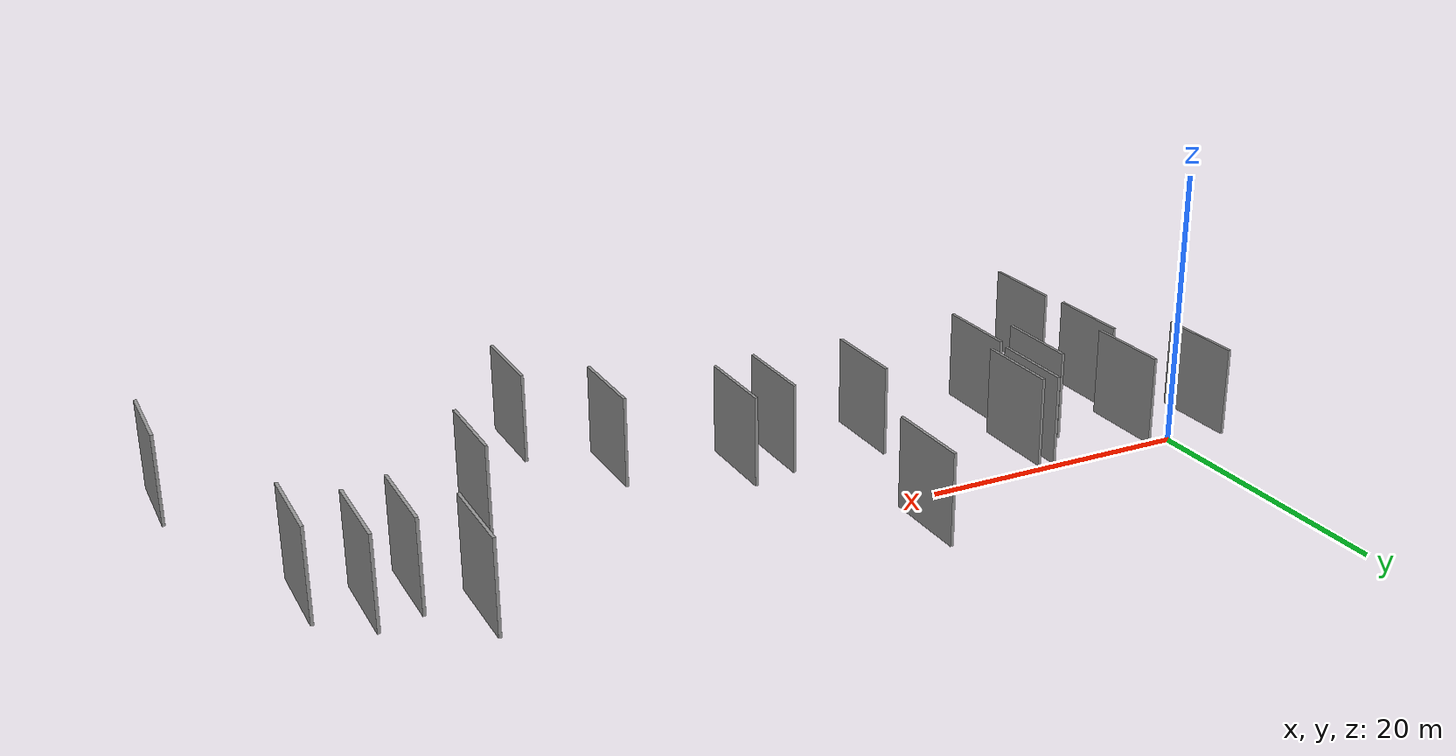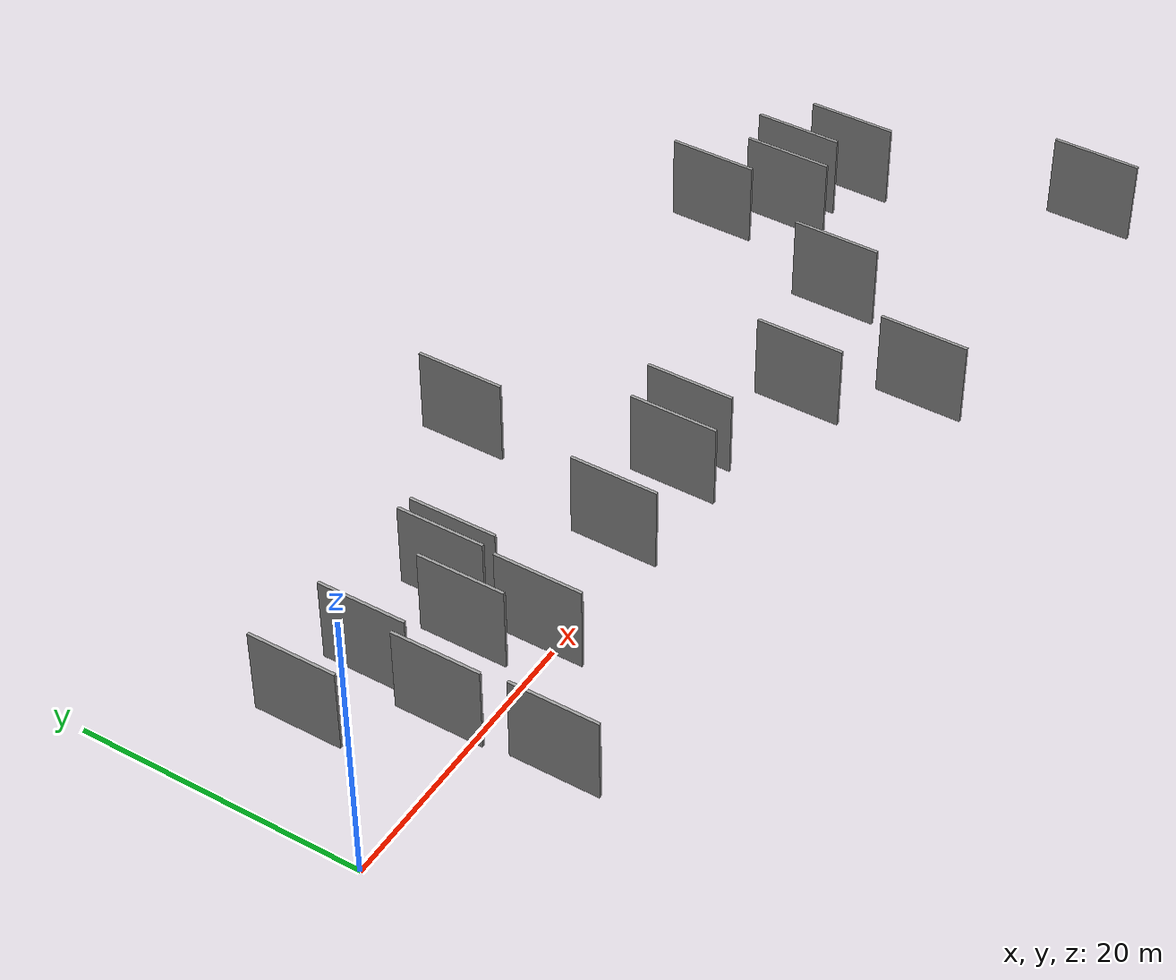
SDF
<sdf version="1.6">
 <world name="default">
  <scene>
   <sky><clouds><speed>12</speed></clouds></sky>
   <ambient>0.4 0.4 0.4 1</ambient>
   <background>0.7 0.7 0.7 1</background>
   <shadows>1</shadows>
  </scene>
  <gravity>0 0 -9.8066</gravity>
  <magnetic_field>6e-06 2.3e-05 -4.2e-05</magnetic_field>
  <physics default="0" name="default_physics" type="ode">
   <ode>
    <solver>
     <type>quick</type>
     <iters>10</iters>
     <sor>1.0</sor>
     <use_dynamic_moi_rescaling>0</use_dynamic_moi_rescaling>
    </solver>
    <constraints>
     <cfm>0</cfm>
     <erp>0.2</erp>
     <contact_max_correcting_vel>100</contact_max_correcting_vel>
     <contact_surface_layer>0.001</contact_surface_layer>
    </constraints>
   </ode>
   <max_step_size>0.004</max_step_size>
   <real_time_factor>1</real_time_factor>
   <real_time_update_rate>250</real_time_update_rate>
  </physics>
  <light name="sun" type="directional">
   <pose>0 0 10 0 0 0</pose>
   <diffuse>0.8 0.8 0.8 1</diffuse>
   <specular>0.2 0.2 0.2 1</specular>
   <attenuation>
    <range>1000</range>
    <constant>0.9</constant>
    <linear>0.01</linear>
    <quadratic>0.001</quadratic>
   </attenuation>
   <direction>-0.5 0.1 -0.9</direction>
  </light>
  <model name="grey_wall_1">
   <static>1</static>
   <pose>63.9856 4.0435 5.0 0.000000 0.000000 1.570796</pose>
   <link name="link">
    <pose>0 0 3.00 0 0 0</pose>
    <collision name="collision"><geometry><box><size>6.00 0.2 6.00</size></box></geometry></collision>
    <visual name="visual">
     <cast_shadows>0</cast_shadows>
     <geometry><box><size>6.00 0.2 6.00</size></box></geometry>
     <material>
      <script>
       <uri>model://grey_wall/materials/scripts</uri>
       <uri>model://grey_wall/materials/textures</uri>
       <name>vrc/grey_wall</name>
      </script>
     </material>
    </visual>
   </link>
  </model>
  <model name="grey_wall_2">
   <static>1</static>
   <pose>55.3651 9.8947 5.0 0.000000 0.000000 1.570796</pose>
   <link name="link">
    <pose>0 0 3.00 0 0 0</pose>
    <collision name="collision"><geometry><box><size>6.00 0.2 6.00</size></box></geometry></collision>
    <visual name="visual">
     <cast_shadows>0</cast_shadows>
     <geometry><box><size>6.00 0.2 6.00</size></box></geometry>
     <material>
      <script>
       <uri>model://grey_wall/materials/scripts</uri>
       <uri>model://grey_wall/materials/textures</uri>
       <name>vrc/grey_wall</name>
      </script>
     </material>
    </visual>
   </link>
  </model>
  <model name="grey_wall_3">
   <static>1</static>
   <pose>16.2559 5.2080 5.0 0.000000 0.000000 1.570796</pose>
   <link name="link">
    <pose>0 0 3.00 0 0 0</pose>
    <collision name="collision"><geometry><box><size>6.00 0.2 6.00</size></box></geometry></collision>
    <visual name="visual">
     <cast_shadows>0</cast_shadows>
     <geometry><box><size>6.00 0.2 6.00</size></box></geometry>
     <material>
      <script>
       <uri>model://grey_wall/materials/scripts</uri>
       <uri>model://grey_wall/materials/textures</uri>
       <name>vrc/grey_wall</name>
      </script>
     </material>
    </visual>
   </link>
  </model>
  <model name="grey_wall_4">
   <static>1</static>
   <pose>17.2977 5.0388 5.0 0.000000 0.000000 1.570796</pose>
   <link name="link">
    <pose>0 0 3.00 0 0 0</pose>
    <collision name="collision"><geometry><box><size>6.00 0.2 6.00</size></box></geometry></collision>
    <visual name="visual">
     <cast_shadows>0</cast_shadows>
     <geometry><box><size>6.00 0.2 6.00</size></box></geometry>
     <material>
      <script>
       <uri>model://grey_wall/materials/scripts</uri>
       <uri>model://grey_wall/materials/textures</uri>
       <name>vrc/grey_wall</name>
      </script>
     </material>
    </visual>
   </link>
  </model>
  <model name="grey_wall_5">
   <static>1</static>
   <pose>52.0070 -1.3309 5.0 0.000000 0.000000 1.570796</pose>
   <link name="link">
    <pose>0 0 3.00 0 0 0</pose>
    <collision name="collision"><geometry><box><size>6.00 0.2 6.00</size></box></geometry></collision>
    <visual name="visual">
     <cast_shadows>0</cast_shadows>
     <geometry><box><size>6.00 0.2 6.00</size></box></geometry>
     <material>
      <script>
       <uri>model://grey_wall/materials/scripts</uri>
       <uri>model://grey_wall/materials/textures</uri>
       <name>vrc/grey_wall</name>
      </script>
     </material>
    </visual>
   </link>
  </model>
  <model name="grey_wall_6">
   <static>1</static>
   <pose>61.0086 6.5382 5.0 0.000000 0.000000 1.570796</pose>
   <link name="link">
    <pose>0 0 3.00 0 0 0</pose>
    <collision name="collision"><geometry><box><size>6.00 0.2 6.00</size></box></geometry></collision>
    <visual name="visual">
     <cast_shadows>0</cast_shadows>
     <geometry><box><size>6.00 0.2 6.00</size></box></geometry>
     <material>
      <script>
       <uri>model://grey_wall/materials/scripts</uri>
       <uri>model://grey_wall/materials/textures</uri>
       <name>vrc/grey_wall</name>
      </script>
     </material>
    </visual>
   </link>
  </model>
  <model name="grey_wall_7">
   <static>1</static>
   <pose>16.0173 -1.7031 5.0 0.000000 0.000000 1.570796</pose>
   <link name="link">
    <pose>0 0 3.00 0 0 0</pose>
    <collision name="collision"><geometry><box><size>6.00 0.2 6.00</size></box></geometry></collision>
    <visual name="visual">
     <cast_shadows>0</cast_shadows>
     <geometry><box><size>6.00 0.2 6.00</size></box></geometry>
     <material>
      <script>
       <uri>model://grey_wall/materials/scripts</uri>
       <uri>model://grey_wall/materials/textures</uri>
       <name>vrc/grey_wall</name>
      </script>
     </material>
    </visual>
   </link>
  </model>
  <model name="grey_wall_8">
   <static>1</static>
   <pose>8.1097 -7.8598 5.0 0.000000 0.000000 1.570796</pose>
   <link name="link">
    <pose>0 0 3.00 0 0 0</pose>
    <collision name="collision"><geometry><box><size>6.00 0.2 6.00</size></box></geometry></collision>
    <visual name="visual">
     <cast_shadows>0</cast_shadows>
     <geometry><box><size>6.00 0.2 6.00</size></box></geometry>
     <material>
      <script>
       <uri>model://grey_wall/materials/scripts</uri>
       <uri>model://grey_wall/materials/textures</uri>
       <name>vrc/grey_wall</name>
      </script>
     </material>
    </visual>
   </link>
  </model>
  <model name="grey_wall_9">
   <static>1</static>
   <pose>42.1483 -4.1487 5.0 0.000000 0.000000 1.570796</pose>
   <link name="link">
    <pose>0 0 3.00 0 0 0</pose>
    <collision name="collision"><geometry><box><size>6.00 0.2 6.00</size></box></geometry></collision>
    <visual name="visual">
     <cast_shadows>0</cast_shadows>
     <geometry><box><size>6.00 0.2 6.00</size></box></geometry>
     <material>
      <script>
       <uri>model://grey_wall/materials/scripts</uri>
       <uri>model://grey_wall/materials/textures</uri>
       <name>vrc/grey_wall</name>
      </script>
     </material>
    </visual>
   </link>
  </model>
  <model name="grey_wall_10">
   <static>1</static>
   <pose>58.2810 5.8237 5.0 0.000000 0.000000 1.570796</pose>
   <link name="link">
    <pose>0 0 3.00 0 0 0</pose>
    <collision name="collision"><geometry><box><size>6.00 0.2 6.00</size></box></geometry></collision>
    <visual name="visual">
     <cast_shadows>0</cast_shadows>
     <geometry><box><size>6.00 0.2 6.00</size></box></geometry>
     <material>
      <script>
       <uri>model://grey_wall/materials/scripts</uri>
       <uri>model://grey_wall/materials/textures</uri>
       <name>vrc/grey_wall</name>
      </script>
     </material>
    </visual>
   </link>
  </model>
  <model name="grey_wall_11">
   <static>1</static>
   <pose>3.5035 6.4516 5.0 0.000000 0.000000 1.570796</pose>
   <link name="link">
    <pose>0 0 3.00 0 0 0</pose>
    <collision name="collision"><geometry><box><size>6.00 0.2 6.00</size></box></geometry></collision>
    <visual name="visual">
     <cast_shadows>0</cast_shadows>
     <geometry><box><size>6.00 0.2 6.00</size></box></geometry>
     <material>
      <script>
       <uri>model://grey_wall/materials/scripts</uri>
       <uri>model://grey_wall/materials/textures</uri>
       <name>vrc/grey_wall</name>
      </script>
     </material>
    </visual>
   </link>
  </model>
  <model name="grey_wall_12">
   <static>1</static>
   <pose>13.6636 2.0164 5.0 0.000000 0.000000 1.570796</pose>
   <link name="link">
    <pose>0 0 3.00 0 0 0</pose>
    <collision name="collision"><geometry><box><size>6.00 0.2 6.00</size></box></geometry></collision>
    <visual name="visual">
     <cast_shadows>0</cast_shadows>
     <geometry><box><size>6.00 0.2 6.00</size></box></geometry>
     <material>
      <script>
       <uri>model://grey_wall/materials/scripts</uri>
       <uri>model://grey_wall/materials/textures</uri>
       <name>vrc/grey_wall</name>
      </script>
     </material>
    </visual>
   </link>
  </model>
  <model name="grey_wall_13">
   <static>1</static>
   <pose>69.0546 -11.7639 5.0 0.000000 0.000000 1.570796</pose>
   <link name="link">
    <pose>0 0 3.00 0 0 0</pose>
    <collision name="collision"><geometry><box><size>6.00 0.2 6.00</size></box></geometry></collision>
    <visual name="visual">
     <cast_shadows>0</cast_shadows>
     <geometry><box><size>6.00 0.2 6.00</size></box></geometry>
     <material>
      <script>
       <uri>model://grey_wall/materials/scripts</uri>
       <uri>model://grey_wall/materials/textures</uri>
       <name>vrc/grey_wall</name>
      </script>
     </material>
    </visual>
   </link>
  </model>
  <model name="grey_wall_14">
   <static>1</static>
   <pose>31.8124 -1.2147 5.0 0.000000 0.000000 1.570796</pose>
   <link name="link">
    <pose>0 0 3.00 0 0 0</pose>
    <collision name="collision"><geometry><box><size>6.00 0.2 6.00</size></box></geometry></collision>
    <visual name="visual">
     <cast_shadows>0</cast_shadows>
     <geometry><box><size>6.00 0.2 6.00</size></box></geometry>
     <material>
      <script>
       <uri>model://grey_wall/materials/scripts</uri>
       <uri>model://grey_wall/materials/textures</uri>
       <name>vrc/grey_wall</name>
      </script>
     </material>
    </visual>
   </link>
  </model>
  <model name="grey_wall_15">
   <static>1</static>
   <pose>7.8110 -0.2627 5.0 0.000000 0.000000 1.570796</pose>
   <link name="link">
    <pose>0 0 3.00 0 0 0</pose>
    <collision name="collision"><geometry><box><size>6.00 0.2 6.00</size></box></geometry></collision>
    <visual name="visual">
     <cast_shadows>0</cast_shadows>
     <geometry><box><size>6.00 0.2 6.00</size></box></geometry>
     <material>
      <script>
       <uri>model://grey_wall/materials/scripts</uri>
       <uri>model://grey_wall/materials/textures</uri>
       <name>vrc/grey_wall</name>
      </script>
     </material>
    </visual>
   </link>
  </model>
  <model name="grey_wall_16">
   <static>1</static>
   <pose>8.8293 5.5021 5.0 0.000000 0.000000 1.570796</pose>
   <link name="link">
    <pose>0 0 3.00 0 0 0</pose>
    <collision name="collision"><geometry><box><size>6.00 0.2 6.00</size></box></geometry></collision>
    <visual name="visual">
     <cast_shadows>0</cast_shadows>
     <geometry><box><size>6.00 0.2 6.00</size></box></geometry>
     <material>
      <script>
       <uri>model://grey_wall/materials/scripts</uri>
       <uri>model://grey_wall/materials/textures</uri>
       <name>vrc/grey_wall</name>
      </script>
     </material>
    </visual>
   </link>
  </model>
  <model name="grey_wall_17">
   <static>1</static>
   <pose>25.2646 -1.0385 5.0 0.000000 0.000000 1.570796</pose>
   <link name="link">
    <pose>0 0 3.00 0 0 0</pose>
    <collision name="collision"><geometry><box><size>6.00 0.2 6.00</size></box></geometry></collision>
    <visual name="visual">
     <cast_shadows>0</cast_shadows>
     <geometry><box><size>6.00 0.2 6.00</size></box></geometry>
     <material>
      <script>
       <uri>model://grey_wall/materials/scripts</uri>
       <uri>model://grey_wall/materials/textures</uri>
       <name>vrc/grey_wall</name>
      </script>
     </material>
    </visual>
   </link>
  </model>
  <model name="grey_wall_18">
   <static>1</static>
   <pose>34.8495 -0.5521 5.0 0.000000 0.000000 1.570796</pose>
   <link name="link">
    <pose>0 0 3.00 0 0 0</pose>
    <collision name="collision"><geometry><box><size>6.00 0.2 6.00</size></box></geometry></collision>
    <visual name="visual">
     <cast_shadows>0</cast_shadows>
     <geometry><box><size>6.00 0.2 6.00</size></box></geometry>
     <material>
      <script>
       <uri>model://grey_wall/materials/scripts</uri>
       <uri>model://grey_wall/materials/textures</uri>
       <name>vrc/grey_wall</name>
      </script>
     </material>
    </visual>
   </link>
  </model>
  <model name="grey_wall_19">
   <static>1</static>
   <pose>28.3064 11.9829 5.0 0.000000 0.000000 1.570796</pose>
   <link name="link">
    <pose>0 0 3.00 0 0 0</pose>
    <collision name="collision"><geometry><box><size>6.00 0.2 6.00</size></box></geometry></collision>
    <visual name="visual">
     <cast_shadows>0</cast_shadows>
     <geometry><box><size>6.00 0.2 6.00</size></box></geometry>
     <material>
      <script>
       <uri>model://grey_wall/materials/scripts</uri>
       <uri>model://grey_wall/materials/textures</uri>
       <name>vrc/grey_wall</name>
      </script>
     </material>
    </visual>
   </link>
  </model>
  <model name="grey_wall_20">
   <static>1</static>
   <pose>46.5104 -10.5612 5.0 0.000000 0.000000 1.570796</pose>
   <link name="link">
    <pose>0 0 3.00 0 0 0</pose>
    <collision name="collision"><geometry><box><size>6.00 0.2 6.00</size></box></geometry></collision>
    <visual name="visual">
     <cast_shadows>0</cast_shadows>
     <geometry><box><size>6.00 0.2 6.00</size></box></geometry>
     <material>
      <script>
       <uri>model://grey_wall/materials/scripts</uri>
       <uri>model://grey_wall/materials/textures</uri>
       <name>vrc/grey_wall</name>
      </script>
     </material>
    </visual>
   </link>
  </model>
 </world>
</sdf>
